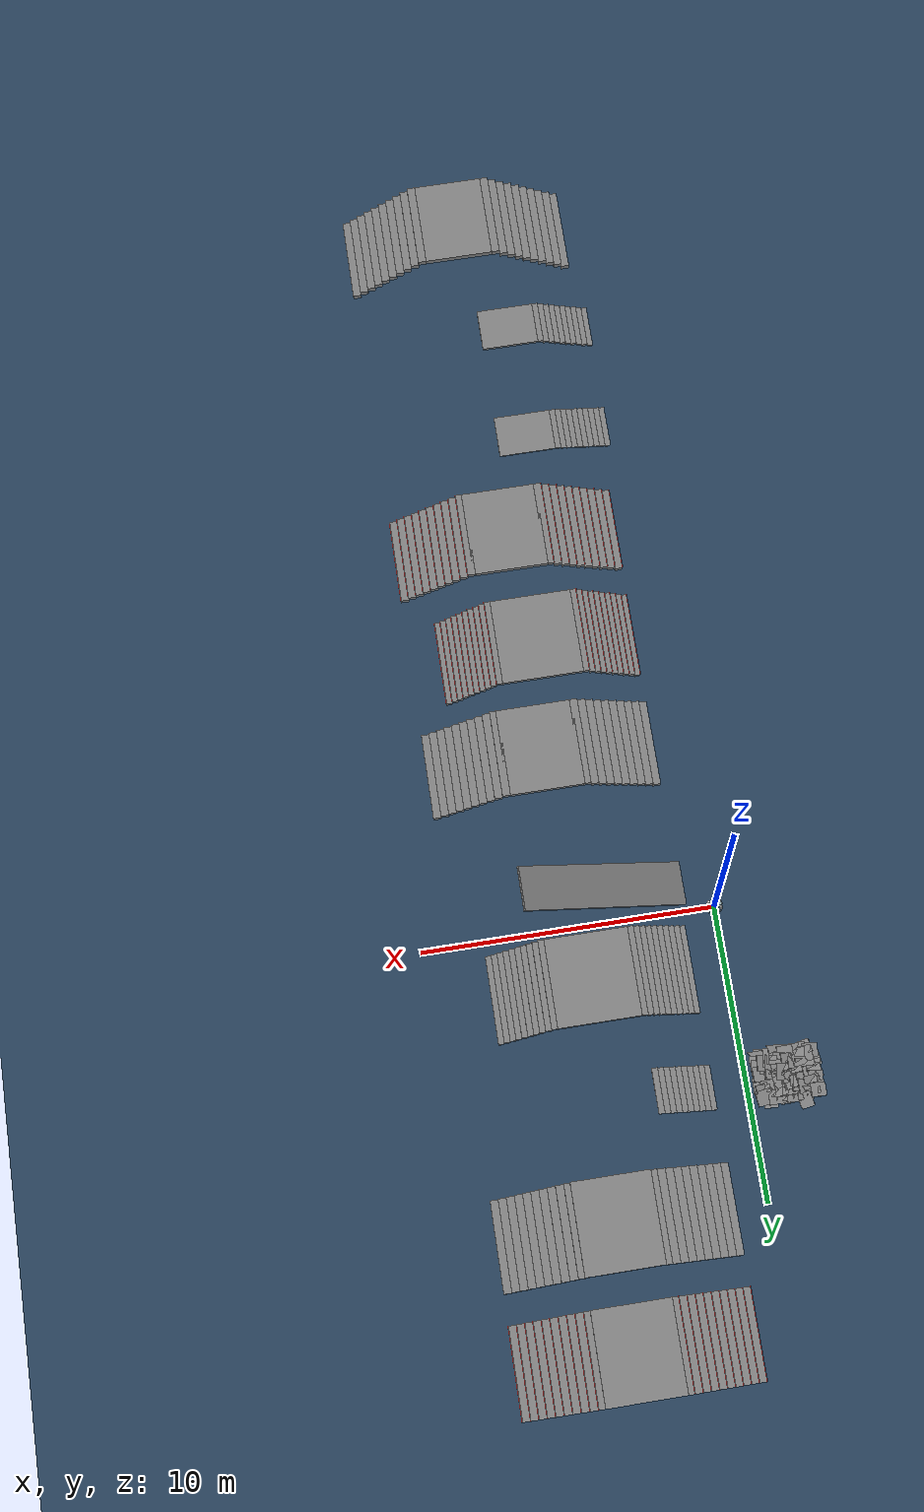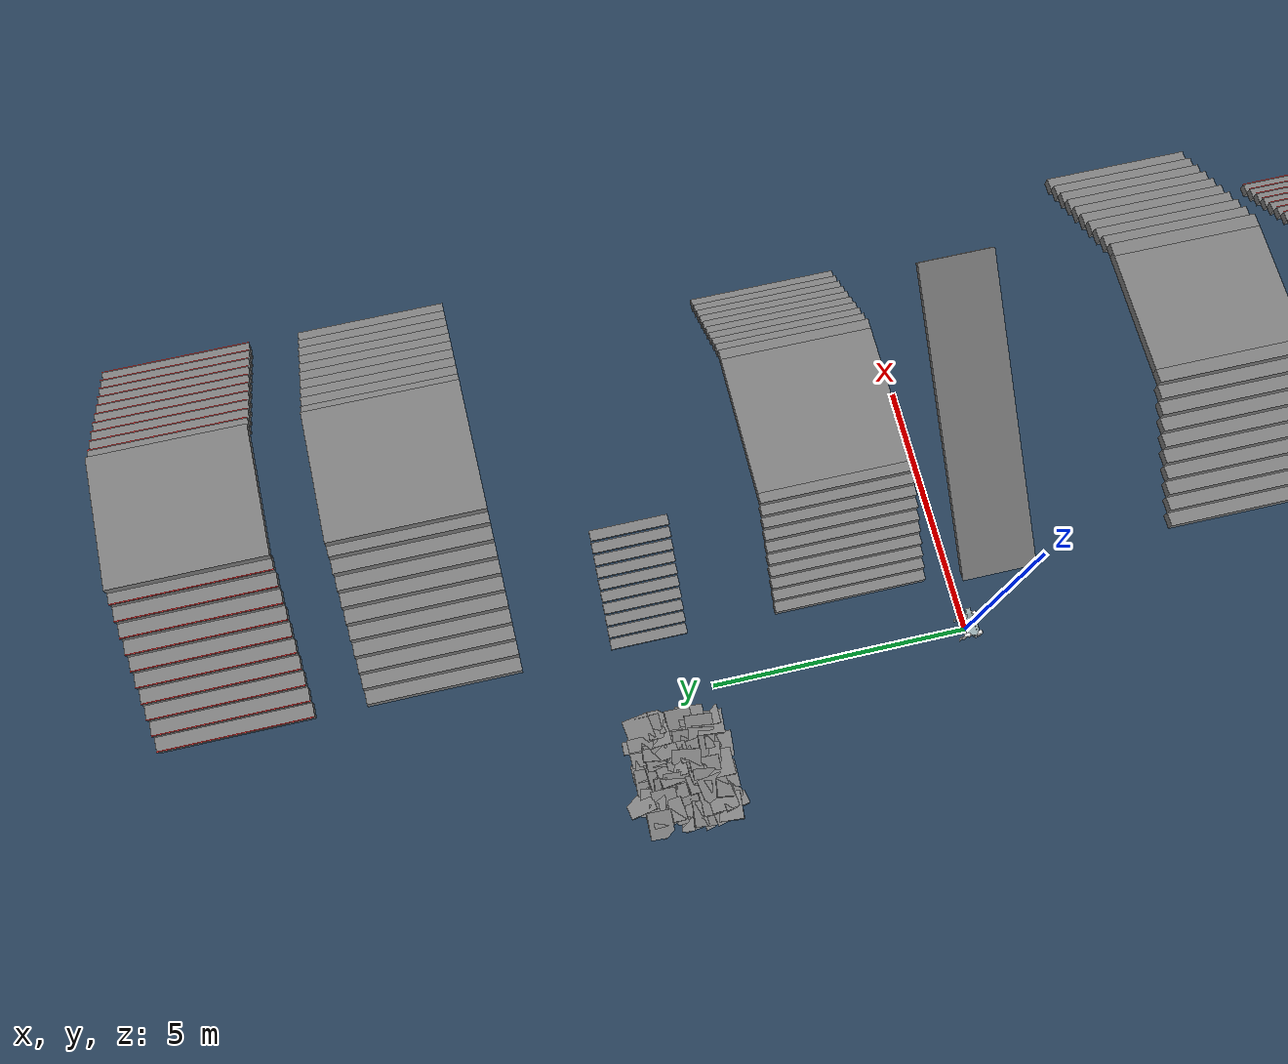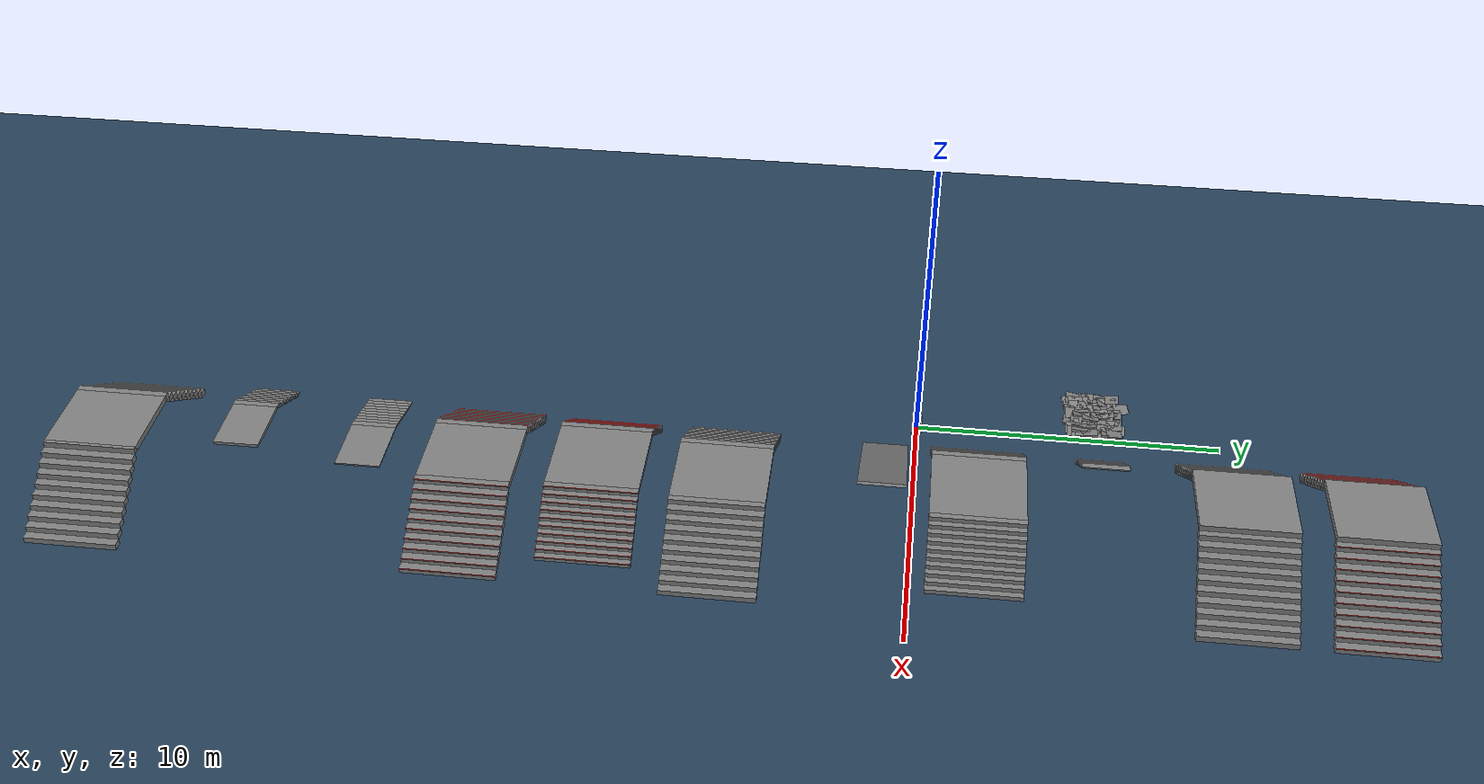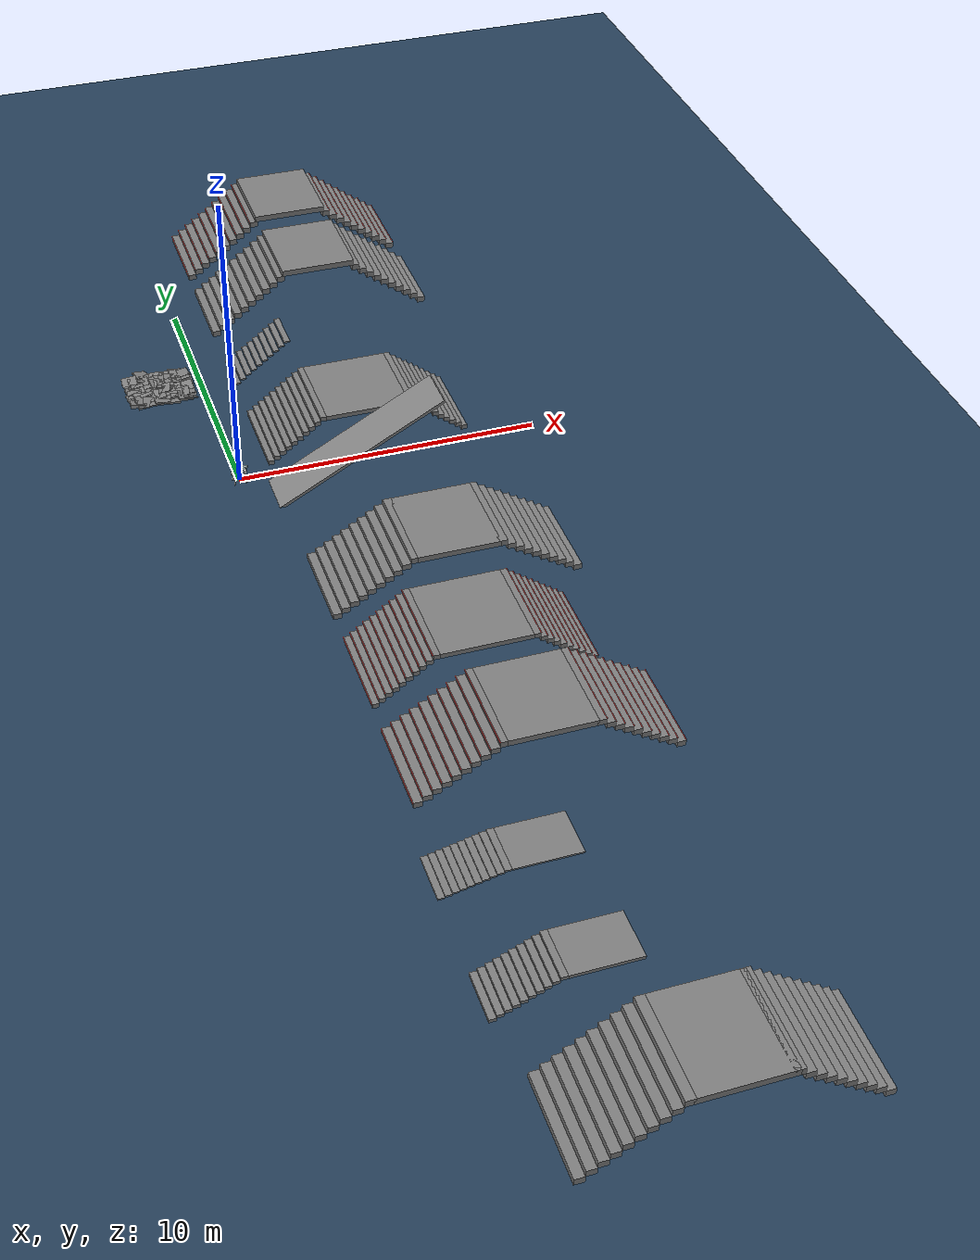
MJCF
<mujoco model="cyvet terrain scene">
  <include file="cyvet.xml"/>

  <statistic center="0 0 0.1" extent="0.8" />

  <visual>
    <headlight diffuse="0.6 0.6 0.6" ambient="0.3 0.3 0.3" specular="0 0 0" />
    <rgba haze="0.15 0.25 0.35 1" />
    <global azimuth="-130" elevation="-20" />
  </visual>

  <asset>
    <texture type="skybox" builtin="gradient" rgb1="0.3 0.5 0.7" rgb2="0 0 0" width="512" height="3072" />
    <texture type="2d" name="groundplane" builtin="checker" mark="edge" rgb1="0.2 0.3 0.4" rgb2="0.1 0.2 0.3" markrgb="0.8 0.8 0.8" width="300" height="300" />
    <material name="groundplane" texture="groundplane" texuniform="true" texrepeat="5 5" reflectance="0.2" />

  </asset>

  <worldbody>
    <light pos="0 0 1.5" dir="0 0 -1" directional="true" />

<geom name="floor" size="0 0 0.05" type="plane" material="groundplane" />

<geom pos="2.0 -1.0 0.5" type="box" size="5.0 0.75 0.05" quat="0.968912421710645 0.0 -0.24740395925452296 0.0" />

   <!-- 5cm/级楼梯 -->
<geom name="stairs_05cm_01" pos="0.8 -18.0 0.025" type="box" size="0.1 0.75 0.025" quat="1.0 0.0 0.0 0.0" />
<geom name="stairs_05cm_02" pos="1.0 -18.0 0.075" type="box" size="0.1 0.75 0.025" quat="1.0 0.0 0.0 0.0" />
<geom name="stairs_05cm_03" pos="1.2 -18.0 0.125" type="box" size="0.1 0.75 0.025" quat="1.0 0.0 0.0 0.0" />
<geom name="stairs_05cm_04" pos="1.4 -18.0 0.175" type="box" size="0.1 0.75 0.025" quat="1.0 0.0 0.0 0.0" />
<geom name="stairs_05cm_05" pos="1.6 -18.0 0.225" type="box" size="0.1 0.75 0.025" quat="1.0 0.0 0.0 0.0" />
<geom name="stairs_05cm_06" pos="1.8 -18.0 0.275" type="box" size="0.1 0.75 0.025" quat="1.0 0.0 0.0 0.0" />
<geom name="stairs_05cm_07" pos="2.0 -18.0 0.325" type="box" size="0.1 0.75 0.025" quat="1.0 0.0 0.0 0.0" />
<geom name="stairs_05cm_08" pos="2.2 -18.0 0.375" type="box" size="0.1 0.75 0.025" quat="1.0 0.0 0.0 0.0" />
<geom name="stairs_05cm_09" pos="2.4 -18.0 0.425" type="box" size="0.1 0.75 0.025" quat="1.0 0.0 0.0 0.0" />
<geom name="stairs_05cm_10" pos="2.6 -18.0 0.475" type="box" size="0.1 0.75 0.025" quat="1.0 0.0 0.0 0.0" />
<geom name="stairs_05cm_platform" pos="3.7 -18.0 0.475" type="box" size="1.0 0.75 0.025" quat="1.0 0.0 0.0 0.0" />

   <!-- 10cm/级楼梯 -->
<geom name="stairs_10cm_01" pos="0.8 -22.0 0.05" type="box" size="0.1 0.75 0.05" quat="1.0 0.0 0.0 0.0" />
<geom name="stairs_10cm_02" pos="1.0 -22.0 0.15" type="box" size="0.1 0.75 0.05" quat="1.0 0.0 0.0 0.0" />
<geom name="stairs_10cm_03" pos="1.2 -22.0 0.25" type="box" size="0.1 0.75 0.05" quat="1.0 0.0 0.0 0.0" />
<geom name="stairs_10cm_04" pos="1.4 -22.0 0.35" type="box" size="0.1 0.75 0.05" quat="1.0 0.0 0.0 0.0" />
<geom name="stairs_10cm_05" pos="1.6 -22.0 0.45" type="box" size="0.1 0.75 0.05" quat="1.0 0.0 0.0 0.0" />
<geom name="stairs_10cm_06" pos="1.8 -22.0 0.55" type="box" size="0.1 0.75 0.05" quat="1.0 0.0 0.0 0.0" />
<geom name="stairs_10cm_07" pos="2.0 -22.0 0.65" type="box" size="0.1 0.75 0.05" quat="1.0 0.0 0.0 0.0" />
<geom name="stairs_10cm_08" pos="2.2 -22.0 0.75" type="box" size="0.1 0.75 0.05" quat="1.0 0.0 0.0 0.0" />
<geom name="stairs_10cm_09" pos="2.4 -22.0 0.85" type="box" size="0.1 0.75 0.05" quat="1.0 0.0 0.0 0.0" />
<geom name="stairs_10cm_10" pos="2.6 -22.0 0.95" type="box" size="0.1 0.75 0.05" quat="1.0 0.0 0.0 0.0" />
<geom name="stairs_10cm_platform" pos="3.7 -22.0 0.95" type="box" size="1.0 0.75 0.05" quat="1.0 0.0 0.0 0.0" />

   <!-- 台阶1 -->
<geom pos="1.2 2.0 0.075" type="box" size="0.1 1.5 0.075" quat="1.0 0.0 0.0 0.0" />
<geom pos="1.4 2.0 0.22499999999999998" type="box" size="0.1 1.5 0.075" quat="1.0 0.0 0.0 0.0" />
<geom pos="1.6 2.0 0.375" type="box" size="0.1 1.5 0.075" quat="1.0 0.0 0.0 0.0" />
<geom pos="1.8 2.0 0.525" type="box" size="0.1 1.5 0.075" quat="1.0 0.0 0.0 0.0" />
<geom pos="2.0 2.0 0.675" type="box" size="0.1 1.5 0.075" quat="1.0 0.0 0.0 0.0" />
<geom pos="2.2 2.0 0.8250000000000001" type="box" size="0.1 1.5 0.075" quat="1.0 0.0 0.0 0.0" />
<geom pos="2.4 2.0 0.9750000000000001" type="box" size="0.1 1.5 0.075" quat="1.0 0.0 0.0 0.0" />
<geom pos="2.5999999999999996 2.0 1.125" type="box" size="0.1 1.5 0.075" quat="1.0 0.0 0.0 0.0" />
<geom pos="2.8 2.0 1.275" type="box" size="0.1 1.5 0.075" quat="1.0 0.0 0.0 0.0" />
<geom pos="3.0 2.0 1.4249999999999998" type="box" size="0.1 1.5 0.075" quat="1.0 0.0 0.0 0.0" />

<geom pos="4.5 2.0 1.4249999999999998" type="box" size="1.4 1.5 0.075" quat="1.0 0.0 0.0 0.0" />
<geom pos="7.8 2.0 0.075" type="box" size="0.1 1.5 0.075" quat="1.0 0.0 0.0 0.0" />
<geom pos="7.6 2.0 0.22499999999999998" type="box" size="0.1 1.5 0.075" quat="1.0 0.0 0.0 0.0" />
<geom pos="7.4 2.0 0.375" type="box" size="0.1 1.5 0.075" quat="1.0 0.0 0.0 0.0" />
<geom pos="7.2 2.0 0.525" type="box" size="0.1 1.5 0.075" quat="1.0 0.0 0.0 0.0" />
<geom pos="7.0 2.0 0.675" type="box" size="0.1 1.5 0.075" quat="1.0 0.0 0.0 0.0" />
<geom pos="6.8 2.0 0.8250000000000001" type="box" size="0.1 1.5 0.075" quat="1.0 0.0 0.0 0.0" />
<geom pos="6.6 2.0 0.9750000000000001" type="box" size="0.1 1.5 0.075" quat="1.0 0.0 0.0 0.0" />
<geom pos="6.4 2.0 1.125" type="box" size="0.1 1.5 0.075" quat="1.0 0.0 0.0 0.0" />
<geom pos="6.2 2.0 1.275" type="box" size="0.1 1.5 0.075" quat="1.0 0.0 0.0 0.0" />
<geom pos="6.0 2.0 1.4249999999999998" type="box" size="0.1 1.5 0.075" quat="1.0 0.0 0.0 0.0" />
   <!-- 台阶1 -->

   <!-- 台阶1（带 2cm 凸起条带 / nosing），放在 y=-10 便于对比 -->
<geom pos="1.2 -10.0 0.075" type="box" size="0.1 1.5 0.075" quat="1.0 0.0 0.0 0.0" />
<geom pos="1.09 -10.0 0.14" type="box" size="0.01 1.5 0.01" quat="1.0 0.0 0.0 0.0" contype="1" conaffinity="1" condim="3" margin="0.002" rgba="0.8 0.2 0.2 1" />
<geom pos="1.4 -10.0 0.22499999999999998" type="box" size="0.1 1.5 0.075" quat="1.0 0.0 0.0 0.0" />
<geom pos="1.29 -10.0 0.29" type="box" size="0.01 1.5 0.01" quat="1.0 0.0 0.0 0.0" contype="1" conaffinity="1" condim="3" margin="0.002" rgba="0.8 0.2 0.2 1" />
<geom pos="1.6 -10.0 0.375" type="box" size="0.1 1.5 0.075" quat="1.0 0.0 0.0 0.0" />
<geom pos="1.49 -10.0 0.44" type="box" size="0.01 1.5 0.01" quat="1.0 0.0 0.0 0.0" contype="1" conaffinity="1" condim="3" margin="0.002" rgba="0.8 0.2 0.2 1" />
<geom pos="1.8 -10.0 0.525" type="box" size="0.1 1.5 0.075" quat="1.0 0.0 0.0 0.0" />
<geom pos="1.69 -10.0 0.59" type="box" size="0.01 1.5 0.01" quat="1.0 0.0 0.0 0.0" contype="1" conaffinity="1" condim="3" margin="0.002" rgba="0.8 0.2 0.2 1" />
<geom pos="2.0 -10.0 0.675" type="box" size="0.1 1.5 0.075" quat="1.0 0.0 0.0 0.0" />
<geom pos="1.89 -10.0 0.74" type="box" size="0.01 1.5 0.01" quat="1.0 0.0 0.0 0.0" contype="1" conaffinity="1" condim="3" margin="0.002" rgba="0.8 0.2 0.2 1" />
<geom pos="2.2 -10.0 0.8250000000000001" type="box" size="0.1 1.5 0.075" quat="1.0 0.0 0.0 0.0" />
<geom pos="2.09 -10.0 0.8900000000000001" type="box" size="0.01 1.5 0.01" quat="1.0 0.0 0.0 0.0" contype="1" conaffinity="1" condim="3" margin="0.002" rgba="0.8 0.2 0.2 1" />
<geom pos="2.4 -10.0 0.9750000000000001" type="box" size="0.1 1.5 0.075" quat="1.0 0.0 0.0 0.0" />
<geom pos="2.29 -10.0 1.04" type="box" size="0.01 1.5 0.01" quat="1.0 0.0 0.0 0.0" contype="1" conaffinity="1" condim="3" margin="0.002" rgba="0.8 0.2 0.2 1" />
<geom pos="2.5999999999999996 -10.0 1.125" type="box" size="0.1 1.5 0.075" quat="1.0 0.0 0.0 0.0" />
<geom pos="2.4899999999999998 -10.0 1.19" type="box" size="0.01 1.5 0.01" quat="1.0 0.0 0.0 0.0" contype="1" conaffinity="1" condim="3" margin="0.002" rgba="0.8 0.2 0.2 1" />
<geom pos="2.8 -10.0 1.275" type="box" size="0.1 1.5 0.075" quat="1.0 0.0 0.0 0.0" />
<geom pos="2.69 -10.0 1.34" type="box" size="0.01 1.5 0.01" quat="1.0 0.0 0.0 0.0" contype="1" conaffinity="1" condim="3" margin="0.002" rgba="0.8 0.2 0.2 1" />
<geom pos="3.0 -10.0 1.4249999999999998" type="box" size="0.1 1.5 0.075" quat="1.0 0.0 0.0 0.0" />
<geom pos="2.89 -10.0 1.4899999999999998" type="box" size="0.01 1.5 0.01" quat="1.0 0.0 0.0 0.0" contype="1" conaffinity="1" condim="3" margin="0.002" rgba="0.8 0.2 0.2 1" />

<geom pos="4.5 -10.0 1.4249999999999998" type="box" size="1.4 1.5 0.075" quat="1.0 0.0 0.0 0.0" />

<geom pos="7.8 -10.0 0.075" type="box" size="0.1 1.5 0.075" quat="1.0 0.0 0.0 0.0" />
<geom pos="7.91 -10.0 0.14" type="box" size="0.01 1.5 0.01" quat="1.0 0.0 0.0 0.0" contype="1" conaffinity="1" condim="3" margin="0.002" rgba="0.8 0.2 0.2 1" />
<geom pos="7.6 -10.0 0.22499999999999998" type="box" size="0.1 1.5 0.075" quat="1.0 0.0 0.0 0.0" />
<geom pos="7.71 -10.0 0.29" type="box" size="0.01 1.5 0.01" quat="1.0 0.0 0.0 0.0" contype="1" conaffinity="1" condim="3" margin="0.002" rgba="0.8 0.2 0.2 1" />
<geom pos="7.4 -10.0 0.375" type="box" size="0.1 1.5 0.075" quat="1.0 0.0 0.0 0.0" />
<geom pos="7.51 -10.0 0.44" type="box" size="0.01 1.5 0.01" quat="1.0 0.0 0.0 0.0" contype="1" conaffinity="1" condim="3" margin="0.002" rgba="0.8 0.2 0.2 1" />
<geom pos="7.2 -10.0 0.525" type="box" size="0.1 1.5 0.075" quat="1.0 0.0 0.0 0.0" />
<geom pos="7.31 -10.0 0.59" type="box" size="0.01 1.5 0.01" quat="1.0 0.0 0.0 0.0" contype="1" conaffinity="1" condim="3" margin="0.002" rgba="0.8 0.2 0.2 1" />
<geom pos="7.0 -10.0 0.675" type="box" size="0.1 1.5 0.075" quat="1.0 0.0 0.0 0.0" />
<geom pos="7.11 -10.0 0.74" type="box" size="0.01 1.5 0.01" quat="1.0 0.0 0.0 0.0" contype="1" conaffinity="1" condim="3" margin="0.002" rgba="0.8 0.2 0.2 1" />
<geom pos="6.8 -10.0 0.8250000000000001" type="box" size="0.1 1.5 0.075" quat="1.0 0.0 0.0 0.0" />
<geom pos="6.91 -10.0 0.8900000000000001" type="box" size="0.01 1.5 0.01" quat="1.0 0.0 0.0 0.0" contype="1" conaffinity="1" condim="3" margin="0.002" rgba="0.8 0.2 0.2 1" />
<geom pos="6.6 -10.0 0.9750000000000001" type="box" size="0.1 1.5 0.075" quat="1.0 0.0 0.0 0.0" />
<geom pos="6.71 -10.0 1.04" type="box" size="0.01 1.5 0.01" quat="1.0 0.0 0.0 0.0" contype="1" conaffinity="1" condim="3" margin="0.002" rgba="0.8 0.2 0.2 1" />
<geom pos="6.4 -10.0 1.125" type="box" size="0.1 1.5 0.075" quat="1.0 0.0 0.0 0.0" />
<geom pos="6.51 -10.0 1.19" type="box" size="0.01 1.5 0.01" quat="1.0 0.0 0.0 0.0" contype="1" conaffinity="1" condim="3" margin="0.002" rgba="0.8 0.2 0.2 1" />
<geom pos="6.2 -10.0 1.275" type="box" size="0.1 1.5 0.075" quat="1.0 0.0 0.0 0.0" />
<geom pos="6.31 -10.0 1.34" type="box" size="0.01 1.5 0.01" quat="1.0 0.0 0.0 0.0" contype="1" conaffinity="1" condim="3" margin="0.002" rgba="0.8 0.2 0.2 1" />
<geom pos="6.0 -10.0 1.4249999999999998" type="box" size="0.1 1.5 0.075" quat="1.0 0.0 0.0 0.0" />
<geom pos="6.11 -10.0 1.4899999999999998" type="box" size="0.01 1.5 0.01" quat="1.0 0.0 0.0 0.0" contype="1" conaffinity="1" condim="3" margin="0.002" rgba="0.8 0.2 0.2 1" />

<geom pos="1.2 6.0 0.075" type="box" size="0.1 0.75 0.024999999999999994" quat="1.0 0.0 0.0 0.0" />
<geom pos="1.4 6.0 0.22499999999999998" type="box" size="0.1 0.75 0.024999999999999994" quat="1.0 0.0 0.0 0.0" />
<geom pos="1.6 6.0 0.375" type="box" size="0.1 0.75 0.024999999999999994" quat="1.0 0.0 0.0 0.0" />
<geom pos="1.8 6.0 0.525" type="box" size="0.1 0.75 0.024999999999999994" quat="1.0 0.0 0.0 0.0" />
<geom pos="2.0 6.0 0.675" type="box" size="0.1 0.75 0.024999999999999994" quat="1.0 0.0 0.0 0.0" />
<geom pos="2.2 6.0 0.8250000000000001" type="box" size="0.1 0.75 0.024999999999999994" quat="1.0 0.0 0.0 0.0" />
<geom pos="2.4 6.0 0.9750000000000001" type="box" size="0.1 0.75 0.024999999999999994" quat="1.0 0.0 0.0 0.0" />
<geom pos="2.5999999999999996 6.0 1.125" type="box" size="0.1 0.75 0.024999999999999994" quat="1.0 0.0 0.0 0.0" />
<geom pos="2.8 6.0 1.275" type="box" size="0.1 0.75 0.024999999999999994" quat="1.0 0.0 0.0 0.0" />
<geom pos="3.0 6.0 1.4249999999999998" type="box" size="0.1 0.75 0.024999999999999994" quat="1.0 0.0 0.0 0.0" />

<!-- 20cm高 27cm宽 台阶 -->
<geom pos="1.2 10 0.1" type="box" size="0.135 1.5 0.1" quat="1.0 0.0 0.0 0.0" />
<geom pos="1.47 10 0.3" type="box" size="0.135 1.5 0.1" quat="1.0 0.0 0.0 0.0" />
<geom pos="1.74 10 0.5" type="box" size="0.135 1.5 0.1" quat="1.0 0.0 0.0 0.0" />
<geom pos="2.01 10 0.7" type="box" size="0.135 1.5 0.1" quat="1.0 0.0 0.0 0.0" />
<geom pos="2.28 10 0.9" type="box" size="0.135 1.5 0.1" quat="1.0 0.0 0.0 0.0" />
<geom pos="2.55 10 1.1" type="box" size="0.135 1.5 0.1" quat="1.0 0.0 0.0 0.0" />
<geom pos="2.82 10 1.3" type="box" size="0.135 1.5 0.1" quat="1.0 0.0 0.0 0.0" />
<geom pos="3.09 10 1.5" type="box" size="0.135 1.5 0.1" quat="1.0 0.0 0.0 0.0" />
<geom pos="3.36 10 1.7" type="box" size="0.135 1.5 0.1" quat="1.0 0.0 0.0 0.0" />
<geom pos="3.63 10 1.9" type="box" size="0.135 1.5 0.1" quat="1.0 0.0 0.0 0.0" />
<geom pos="5 10 2.1" type="box" size="1.3 1.5 0.1" quat="1.0 0.0 0.0 0.0" />

<geom pos="8.8 10 0.1" type="box" size="0.135 1.5 0.1" quat="1.0 0.0 0.0 0.0" />
<geom pos="8.53 10 0.3" type="box" size="0.135 1.5 0.1" quat="1.0 0.0 0.0 0.0" />
<geom pos="8.26 10 0.5" type="box" size="0.135 1.5 0.1" quat="1.0 0.0 0.0 0.0" />
<geom pos="7.99 10 0.7" type="box" size="0.135 1.5 0.1" quat="1.0 0.0 0.0 0.0" />
<geom pos="7.72 10 0.9" type="box" size="0.135 1.5 0.1" quat="1.0 0.0 0.0 0.0" />
<geom pos="7.45 10 1.1" type="box" size="0.135 1.5 0.1" quat="1.0 0.0 0.0 0.0" />
<geom pos="7.18 10 1.3" type="box" size="0.135 1.5 0.1" quat="1.0 0.0 0.0 0.0" />
<geom pos="6.91 10 1.5" type="box" size="0.135 1.5 0.1" quat="1.0 0.0 0.0 0.0" />
<geom pos="6.64 10 1.7" type="box" size="0.135 1.5 0.1" quat="1.0 0.0 0.0 0.0" />
<geom pos="6.37 10 1.9" type="box" size="0.135 1.5 0.1" quat="1.0 0.0 0.0 0.0" />

<!-- 20cm高 27cm宽 台阶（带 2cm 凸起条带 / nosing），放在 y=14 便于对比 -->
<geom pos="1.2 14 0.1" type="box" size="0.135 1.5 0.1" quat="1.0 0.0 0.0 0.0" />
<geom pos="1.055 14 0.19" type="box" size="0.01 1.5 0.01" quat="1.0 0.0 0.0 0.0" contype="1" conaffinity="1" condim="3" margin="0.002" rgba="0.8 0.2 0.2 1" />
<geom pos="1.47 14 0.3" type="box" size="0.135 1.5 0.1" quat="1.0 0.0 0.0 0.0" />
<geom pos="1.325 14 0.39" type="box" size="0.01 1.5 0.01" quat="1.0 0.0 0.0 0.0" contype="1" conaffinity="1" condim="3" margin="0.002" rgba="0.8 0.2 0.2 1" />
<geom pos="1.74 14 0.5" type="box" size="0.135 1.5 0.1" quat="1.0 0.0 0.0 0.0" />
<geom pos="1.595 14 0.59" type="box" size="0.01 1.5 0.01" quat="1.0 0.0 0.0 0.0" contype="1" conaffinity="1" condim="3" margin="0.002" rgba="0.8 0.2 0.2 1" />
<geom pos="2.01 14 0.7" type="box" size="0.135 1.5 0.1" quat="1.0 0.0 0.0 0.0" />
<geom pos="1.865 14 0.7899999999999999" type="box" size="0.01 1.5 0.01" quat="1.0 0.0 0.0 0.0" contype="1" conaffinity="1" condim="3" margin="0.002" rgba="0.8 0.2 0.2 1" />
<geom pos="2.28 14 0.9" type="box" size="0.135 1.5 0.1" quat="1.0 0.0 0.0 0.0" />
<geom pos="2.135 14 0.99" type="box" size="0.01 1.5 0.01" quat="1.0 0.0 0.0 0.0" contype="1" conaffinity="1" condim="3" margin="0.002" rgba="0.8 0.2 0.2 1" />
<geom pos="2.55 14 1.1" type="box" size="0.135 1.5 0.1" quat="1.0 0.0 0.0 0.0" />
<geom pos="2.405 14 1.1900000000000002" type="box" size="0.01 1.5 0.01" quat="1.0 0.0 0.0 0.0" contype="1" conaffinity="1" condim="3" margin="0.002" rgba="0.8 0.2 0.2 1" />
<geom pos="2.82 14 1.3" type="box" size="0.135 1.5 0.1" quat="1.0 0.0 0.0 0.0" />
<geom pos="2.675 14 1.39" type="box" size="0.01 1.5 0.01" quat="1.0 0.0 0.0 0.0" contype="1" conaffinity="1" condim="3" margin="0.002" rgba="0.8 0.2 0.2 1" />
<geom pos="3.09 14 1.5" type="box" size="0.135 1.5 0.1" quat="1.0 0.0 0.0 0.0" />
<geom pos="2.945 14 1.5899999999999999" type="box" size="0.01 1.5 0.01" quat="1.0 0.0 0.0 0.0" contype="1" conaffinity="1" condim="3" margin="0.002" rgba="0.8 0.2 0.2 1" />
<geom pos="3.36 14 1.7" type="box" size="0.135 1.5 0.1" quat="1.0 0.0 0.0 0.0" />
<geom pos="3.215 14 1.79" type="box" size="0.01 1.5 0.01" quat="1.0 0.0 0.0 0.0" contype="1" conaffinity="1" condim="3" margin="0.002" rgba="0.8 0.2 0.2 1" />
<geom pos="3.63 14 1.9" type="box" size="0.135 1.5 0.1" quat="1.0 0.0 0.0 0.0" />
<geom pos="3.485 14 1.99" type="box" size="0.01 1.5 0.01" quat="1.0 0.0 0.0 0.0" contype="1" conaffinity="1" condim="3" margin="0.002" rgba="0.8 0.2 0.2 1" />
<geom pos="5 14 2.1" type="box" size="1.3 1.5 0.1" quat="1.0 0.0 0.0 0.0" />

<geom pos="8.8 14 0.1" type="box" size="0.135 1.5 0.1" quat="1.0 0.0 0.0 0.0" />
<geom pos="8.945 14 0.19" type="box" size="0.01 1.5 0.01" quat="1.0 0.0 0.0 0.0" contype="1" conaffinity="1" condim="3" margin="0.002" rgba="0.8 0.2 0.2 1" />
<geom pos="8.53 14 0.3" type="box" size="0.135 1.5 0.1" quat="1.0 0.0 0.0 0.0" />
<geom pos="8.675 14 0.39" type="box" size="0.01 1.5 0.01" quat="1.0 0.0 0.0 0.0" contype="1" conaffinity="1" condim="3" margin="0.002" rgba="0.8 0.2 0.2 1" />
<geom pos="8.26 14 0.5" type="box" size="0.135 1.5 0.1" quat="1.0 0.0 0.0 0.0" />
<geom pos="8.405 14 0.59" type="box" size="0.01 1.5 0.01" quat="1.0 0.0 0.0 0.0" contype="1" conaffinity="1" condim="3" margin="0.002" rgba="0.8 0.2 0.2 1" />
<geom pos="7.99 14 0.7" type="box" size="0.135 1.5 0.1" quat="1.0 0.0 0.0 0.0" />
<geom pos="8.135 14 0.7899999999999999" type="box" size="0.01 1.5 0.01" quat="1.0 0.0 0.0 0.0" contype="1" conaffinity="1" condim="3" margin="0.002" rgba="0.8 0.2 0.2 1" />
<geom pos="7.72 14 0.9" type="box" size="0.135 1.5 0.1" quat="1.0 0.0 0.0 0.0" />
<geom pos="7.865 14 0.99" type="box" size="0.01 1.5 0.01" quat="1.0 0.0 0.0 0.0" contype="1" conaffinity="1" condim="3" margin="0.002" rgba="0.8 0.2 0.2 1" />
<geom pos="7.45 14 1.1" type="box" size="0.135 1.5 0.1" quat="1.0 0.0 0.0 0.0" />
<geom pos="7.595 14 1.1900000000000002" type="box" size="0.01 1.5 0.01" quat="1.0 0.0 0.0 0.0" contype="1" conaffinity="1" condim="3" margin="0.002" rgba="0.8 0.2 0.2 1" />
<geom pos="7.18 14 1.3" type="box" size="0.135 1.5 0.1" quat="1.0 0.0 0.0 0.0" />
<geom pos="7.325 14 1.39" type="box" size="0.01 1.5 0.01" quat="1.0 0.0 0.0 0.0" contype="1" conaffinity="1" condim="3" margin="0.002" rgba="0.8 0.2 0.2 1" />
<geom pos="6.91 14 1.5" type="box" size="0.135 1.5 0.1" quat="1.0 0.0 0.0 0.0" />
<geom pos="7.055 14 1.5899999999999999" type="box" size="0.01 1.5 0.01" quat="1.0 0.0 0.0 0.0" contype="1" conaffinity="1" condim="3" margin="0.002" rgba="0.8 0.2 0.2 1" />
<geom pos="6.64 14 1.7" type="box" size="0.135 1.5 0.1" quat="1.0 0.0 0.0 0.0" />
<geom pos="6.785 14 1.79" type="box" size="0.01 1.5 0.01" quat="1.0 0.0 0.0 0.0" contype="1" conaffinity="1" condim="3" margin="0.002" rgba="0.8 0.2 0.2 1" />
<geom pos="6.37 14 1.9" type="box" size="0.135 1.5 0.1" quat="1.0 0.0 0.0 0.0" />
<geom pos="6.515 14 1.99" type="box" size="0.01 1.5 0.01" quat="1.0 0.0 0.0 0.0" contype="1" conaffinity="1" condim="3" margin="0.002" rgba="0.8 0.2 0.2 1" />

<!-- 17cm高 27cm宽 台阶 -->
<geom pos="1.2 -6 0.085" type="box" size="0.135 1.5 0.09" quat="1.0 0.0 0.0 0.0" />
<geom pos="1.47 -6 0.255" type="box" size="0.135 1.5 0.09" quat="1.0 0.0 0.0 0.0" />
<geom pos="1.74 -6 0.425" type="box" size="0.135 1.5 0.09" quat="1.0 0.0 0.0 0.0" />
<geom pos="2.01 -6 0.595" type="box" size="0.135 1.5 0.09" quat="1.0 0.0 0.0 0.0" />
<geom pos="2.28 -6 0.765" type="box" size="0.135 1.5 0.09" quat="1.0 0.0 0.0 0.0" />
<geom pos="2.55 -6 0.935" type="box" size="0.135 1.5 0.09" quat="1.0 0.0 0.0 0.0" />
<geom pos="2.82 -6 1.105" type="box" size="0.135 1.5 0.09" quat="1.0 0.0 0.0 0.0" />
<geom pos="3.09 -6 1.275" type="box" size="0.135 1.5 0.09" quat="1.0 0.0 0.0 0.0" />
<geom pos="3.36 -6 1.445" type="box" size="0.135 1.5 0.09" quat="1.0 0.0 0.0 0.0" />
<geom pos="3.63 -6 1.615" type="box" size="0.135 1.5 0.09" quat="1.0 0.0 0.0 0.0" />
<geom pos="5 -6 1.615" type="box" size="1.3 1.5 0.09" quat="1.0 0.0 0.0 0.0" />

<geom pos="8.8 -6 0.085" type="box" size="0.135 1.5 0.09" quat="1.0 0.0 0.0 0.0" />
<geom pos="8.53 -6 0.255" type="box" size="0.135 1.5 0.09" quat="1.0 0.0 0.0 0.0" />
<geom pos="8.26 -6 0.425" type="box" size="0.135 1.5 0.09" quat="1.0 0.0 0.0 0.0" />
<geom pos="7.99 -6 0.595" type="box" size="0.135 1.5 0.09" quat="1.0 0.0 0.0 0.0" />
<geom pos="7.72 -6 0.765" type="box" size="0.135 1.5 0.09" quat="1.0 0.0 0.0 0.0" />
<geom pos="7.45 -6 0.935" type="box" size="0.135 1.5 0.09" quat="1.0 0.0 0.0 0.0" />
<geom pos="7.18 -6 1.105" type="box" size="0.135 1.5 0.09" quat="1.0 0.0 0.0 0.0" />
<geom pos="6.91 -6 1.275" type="box" size="0.135 1.5 0.09" quat="1.0 0.0 0.0 0.0" />
<geom pos="6.64 -6 1.445" type="box" size="0.135 1.5 0.09" quat="1.0 0.0 0.0 0.0" />
<geom pos="6.37 -6 1.615" type="box" size="0.135 1.5 0.09" quat="1.0 0.0 0.0 0.0" />

<!-- 17cm高 27cm宽 台阶（带 2cm 凸起条带 / nosing），放在 y=-14 便于对比 -->
<geom pos="1.2 -14 0.085" type="box" size="0.135 1.5 0.09" quat="1.0 0.0 0.0 0.0" />
<geom pos="1.055 -14 0.165" type="box" size="0.01 1.5 0.01" quat="1.0 0.0 0.0 0.0" contype="1" conaffinity="1" condim="3" margin="0.002" rgba="0.8 0.2 0.2 1" />
<geom pos="1.47 -14 0.255" type="box" size="0.135 1.5 0.09" quat="1.0 0.0 0.0 0.0" />
<geom pos="1.325 -14 0.335" type="box" size="0.01 1.5 0.01" quat="1.0 0.0 0.0 0.0" contype="1" conaffinity="1" condim="3" margin="0.002" rgba="0.8 0.2 0.2 1" />
<geom pos="1.74 -14 0.425" type="box" size="0.135 1.5 0.09" quat="1.0 0.0 0.0 0.0" />
<geom pos="1.595 -14 0.505" type="box" size="0.01 1.5 0.01" quat="1.0 0.0 0.0 0.0" contype="1" conaffinity="1" condim="3" margin="0.002" rgba="0.8 0.2 0.2 1" />
<geom pos="2.01 -14 0.595" type="box" size="0.135 1.5 0.09" quat="1.0 0.0 0.0 0.0" />
<geom pos="1.865 -14 0.675" type="box" size="0.01 1.5 0.01" quat="1.0 0.0 0.0 0.0" contype="1" conaffinity="1" condim="3" margin="0.002" rgba="0.8 0.2 0.2 1" />
<geom pos="2.28 -14 0.765" type="box" size="0.135 1.5 0.09" quat="1.0 0.0 0.0 0.0" />
<geom pos="2.135 -14 0.845" type="box" size="0.01 1.5 0.01" quat="1.0 0.0 0.0 0.0" contype="1" conaffinity="1" condim="3" margin="0.002" rgba="0.8 0.2 0.2 1" />
<geom pos="2.55 -14 0.935" type="box" size="0.135 1.5 0.09" quat="1.0 0.0 0.0 0.0" />
<geom pos="2.405 -14 1.015" type="box" size="0.01 1.5 0.01" quat="1.0 0.0 0.0 0.0" contype="1" conaffinity="1" condim="3" margin="0.002" rgba="0.8 0.2 0.2 1" />
<geom pos="2.82 -14 1.105" type="box" size="0.135 1.5 0.09" quat="1.0 0.0 0.0 0.0" />
<geom pos="2.675 -14 1.185" type="box" size="0.01 1.5 0.01" quat="1.0 0.0 0.0 0.0" contype="1" conaffinity="1" condim="3" margin="0.002" rgba="0.8 0.2 0.2 1" />
<geom pos="3.09 -14 1.275" type="box" size="0.135 1.5 0.09" quat="1.0 0.0 0.0 0.0" />
<geom pos="2.945 -14 1.355" type="box" size="0.01 1.5 0.01" quat="1.0 0.0 0.0 0.0" contype="1" conaffinity="1" condim="3" margin="0.002" rgba="0.8 0.2 0.2 1" />
<geom pos="3.36 -14 1.445" type="box" size="0.135 1.5 0.09" quat="1.0 0.0 0.0 0.0" />
<geom pos="3.215 -14 1.525" type="box" size="0.01 1.5 0.01" quat="1.0 0.0 0.0 0.0" contype="1" conaffinity="1" condim="3" margin="0.002" rgba="0.8 0.2 0.2 1" />
<geom pos="3.63 -14 1.615" type="box" size="0.135 1.5 0.09" quat="1.0 0.0 0.0 0.0" />
<geom pos="3.485 -14 1.695" type="box" size="0.01 1.5 0.01" quat="1.0 0.0 0.0 0.0" contype="1" conaffinity="1" condim="3" margin="0.002" rgba="0.8 0.2 0.2 1" />
<geom pos="5 -14 1.615" type="box" size="1.3 1.5 0.09" quat="1.0 0.0 0.0 0.0" />

<geom pos="8.8 -14 0.085" type="box" size="0.135 1.5 0.09" quat="1.0 0.0 0.0 0.0" />
<geom pos="8.945 -14 0.165" type="box" size="0.01 1.5 0.01" quat="1.0 0.0 0.0 0.0" contype="1" conaffinity="1" condim="3" margin="0.002" rgba="0.8 0.2 0.2 1" />
<geom pos="8.53 -14 0.255" type="box" size="0.135 1.5 0.09" quat="1.0 0.0 0.0 0.0" />
<geom pos="8.675 -14 0.335" type="box" size="0.01 1.5 0.01" quat="1.0 0.0 0.0 0.0" contype="1" conaffinity="1" condim="3" margin="0.002" rgba="0.8 0.2 0.2 1" />
<geom pos="8.26 -14 0.425" type="box" size="0.135 1.5 0.09" quat="1.0 0.0 0.0 0.0" />
<geom pos="8.405 -14 0.505" type="box" size="0.01 1.5 0.01" quat="1.0 0.0 0.0 0.0" contype="1" conaffinity="1" condim="3" margin="0.002" rgba="0.8 0.2 0.2 1" />
<geom pos="7.99 -14 0.595" type="box" size="0.135 1.5 0.09" quat="1.0 0.0 0.0 0.0" />
<geom pos="8.135 -14 0.675" type="box" size="0.01 1.5 0.01" quat="1.0 0.0 0.0 0.0" contype="1" conaffinity="1" condim="3" margin="0.002" rgba="0.8 0.2 0.2 1" />
<geom pos="7.72 -14 0.765" type="box" size="0.135 1.5 0.09" quat="1.0 0.0 0.0 0.0" />
<geom pos="7.865 -14 0.845" type="box" size="0.01 1.5 0.01" quat="1.0 0.0 0.0 0.0" contype="1" conaffinity="1" condim="3" margin="0.002" rgba="0.8 0.2 0.2 1" />
<geom pos="7.45 -14 0.935" type="box" size="0.135 1.5 0.09" quat="1.0 0.0 0.0 0.0" />
<geom pos="7.595 -14 1.015" type="box" size="0.01 1.5 0.01" quat="1.0 0.0 0.0 0.0" contype="1" conaffinity="1" condim="3" margin="0.002" rgba="0.8 0.2 0.2 1" />
<geom pos="7.18 -14 1.105" type="box" size="0.135 1.5 0.09" quat="1.0 0.0 0.0 0.0" />
<geom pos="7.325 -14 1.185" type="box" size="0.01 1.5 0.01" quat="1.0 0.0 0.0 0.0" contype="1" conaffinity="1" condim="3" margin="0.002" rgba="0.8 0.2 0.2 1" />
<geom pos="6.91 -14 1.275" type="box" size="0.135 1.5 0.09" quat="1.0 0.0 0.0 0.0" />
<geom pos="7.055 -14 1.355" type="box" size="0.01 1.5 0.01" quat="1.0 0.0 0.0 0.0" contype="1" conaffinity="1" condim="3" margin="0.002" rgba="0.8 0.2 0.2 1" />
<geom pos="6.64 -14 1.445" type="box" size="0.135 1.5 0.09" quat="1.0 0.0 0.0 0.0" />
<geom pos="6.785 -14 1.525" type="box" size="0.01 1.5 0.01" quat="1.0 0.0 0.0 0.0" contype="1" conaffinity="1" condim="3" margin="0.002" rgba="0.8 0.2 0.2 1" />
<geom pos="6.37 -14 1.615" type="box" size="0.135 1.5 0.09" quat="1.0 0.0 0.0 0.0" />
<geom pos="6.515 -14 1.695" type="box" size="0.01 1.5 0.01" quat="1.0 0.0 0.0 0.0" contype="1" conaffinity="1" condim="3" margin="0.002" rgba="0.8 0.2 0.2 1" />

<!-- 20cm高 28cm宽 台阶 -->
<geom name="stairs_20cm_28cm_up_01" pos="1.2 -26 0.1" type="box" size="0.14 1.5 0.1" quat="1.0 0.0 0.0 0.0" />
<geom name="stairs_20cm_28cm_up_02" pos="1.48 -26 0.3" type="box" size="0.14 1.5 0.1" quat="1.0 0.0 0.0 0.0" />
<geom name="stairs_20cm_28cm_up_03" pos="1.76 -26 0.5" type="box" size="0.14 1.5 0.1" quat="1.0 0.0 0.0 0.0" />
<geom name="stairs_20cm_28cm_up_04" pos="2.04 -26 0.7" type="box" size="0.14 1.5 0.1" quat="1.0 0.0 0.0 0.0" />
<geom name="stairs_20cm_28cm_up_05" pos="2.32 -26 0.9" type="box" size="0.14 1.5 0.1" quat="1.0 0.0 0.0 0.0" />
<geom name="stairs_20cm_28cm_up_06" pos="2.6 -26 1.1" type="box" size="0.14 1.5 0.1" quat="1.0 0.0 0.0 0.0" />
<geom name="stairs_20cm_28cm_up_07" pos="2.88 -26 1.3" type="box" size="0.14 1.5 0.1" quat="1.0 0.0 0.0 0.0" />
<geom name="stairs_20cm_28cm_up_08" pos="3.16 -26 1.5" type="box" size="0.14 1.5 0.1" quat="1.0 0.0 0.0 0.0" />
<geom name="stairs_20cm_28cm_up_09" pos="3.44 -26 1.7" type="box" size="0.14 1.5 0.1" quat="1.0 0.0 0.0 0.0" />
<geom name="stairs_20cm_28cm_up_10" pos="3.72 -26 1.9" type="box" size="0.14 1.5 0.1" quat="1.0 0.0 0.0 0.0" />
<geom name="stairs_20cm_28cm_platform" pos="5.1 -26 1.9" type="box" size="1.3 1.5 0.1" quat="1.0 0.0 0.0 0.0" />

<geom name="stairs_20cm_28cm_down_01" pos="8.9 -26 0.1" type="box" size="0.14 1.5 0.1" quat="1.0 0.0 0.0 0.0" />
<geom name="stairs_20cm_28cm_down_02" pos="8.62 -26 0.3" type="box" size="0.14 1.5 0.1" quat="1.0 0.0 0.0 0.0" />
<geom name="stairs_20cm_28cm_down_03" pos="8.34 -26 0.5" type="box" size="0.14 1.5 0.1" quat="1.0 0.0 0.0 0.0" />
<geom name="stairs_20cm_28cm_down_04" pos="8.06 -26 0.7" type="box" size="0.14 1.5 0.1" quat="1.0 0.0 0.0 0.0" />
<geom name="stairs_20cm_28cm_down_05" pos="7.78 -26 0.9" type="box" size="0.14 1.5 0.1" quat="1.0 0.0 0.0 0.0" />
<geom name="stairs_20cm_28cm_down_06" pos="7.5 -26 1.1" type="box" size="0.14 1.5 0.1" quat="1.0 0.0 0.0 0.0" />
<geom name="stairs_20cm_28cm_down_07" pos="7.22 -26 1.3" type="box" size="0.14 1.5 0.1" quat="1.0 0.0 0.0 0.0" />
<geom name="stairs_20cm_28cm_down_08" pos="6.94 -26 1.5" type="box" size="0.14 1.5 0.1" quat="1.0 0.0 0.0 0.0" />
<geom name="stairs_20cm_28cm_down_09" pos="6.66 -26 1.7" type="box" size="0.14 1.5 0.1" quat="1.0 0.0 0.0 0.0" />
<geom name="stairs_20cm_28cm_down_10" pos="6.38 -26 1.9" type="box" size="0.14 1.5 0.1" quat="1.0 0.0 0.0 0.0" />

<geom pos="-2.3004568480001155 5.230133099821309 -0.25" type="box" size="0.2667418434232123 0.23249216246593754 0.2715603840154582" quat="0.9937514109759715 -0.09011523303710722 0.04584049177774514 -0.04728665003473938" />
<geom pos="-2.3004568480001155 5.391515746812814 -0.25" type="box" size="0.2505265313539923 0.2412016313894627 0.2264599735410741" quat="0.9947855832976967 0.0430479213794962 0.004496328850963352 0.0923488102512985" />
<geom pos="-2.3004568480001155 5.632708194664771 -0.25" type="box" size="0.2744568938089314 0.24992449427731162 0.22801643019685697" quat="0.9927267717486197 0.07160131296835394 -0.005361370104009311 0.09663366051940456" />
<geom pos="-2.3004568480001155 5.798990692476225 -0.25" type="box" size="0.24325500647900072 0.2253568952181176 0.26629093934549475" quat="0.9942381647366705 0.09525301325965287 0.00794678229822832 -0.048519932987572345" />
<geom pos="-2.3004568480001155 5.973541127254212 -0.25" type="box" size="0.2398510354361266 0.24285052907373605 0.26474659664781297" quat="0.9964084612238755 -0.04106533003165011 -0.0363795415854814 0.06450074437470632" />
<geom pos="-2.3004568480001155 6.1770510315939235 -0.25" type="box" size="0.25720829764278585 0.23711879563200236 0.22878298749776027" quat="0.9937658772683013 -0.08834725270306294 0.0169573991826565 -0.06585279591592566" />
<geom pos="-2.3004568480001155 6.407180520840007 -0.25" type="box" size="0.24754562515074474 0.25947160159627974 0.23928331743280107" quat="0.9958964892628885 0.04305664599570697 -0.045399565427206114 0.0653849169799509" />
<geom pos="-2.3004568480001155 6.629340270719652 -0.25" type="box" size="0.2547590853159438 0.2314305783929404 0.268237133040538" quat="0.9972993669391019 0.044601800582484905 -0.05693885512370222 -0.012752210195468728" />
<geom pos="-2.1403960142105545 5.169451405171494 -0.25" type="box" size="0.24860553780818326 0.2298644058617868 0.2557271181931712" quat="0.9914709750904385 0.03140703504746152 0.09964006753412274 0.07791508611647713" />
<geom pos="-2.1403960142105545 5.365443034016214 -0.25" type="box" size="0.2291512386430681 0.25867181712863563 0.27347983292603073" quat="0.9971489888939771 -0.012801738465963004 0.06299248639499276 0.039521590273487665" />
<geom pos="-2.1403960142105545 5.564856717019695 -0.25" type="box" size="0.23402731407731425 0.26579436660697997 0.2553901560684408" quat="0.9966301905043169 0.07818366455605208 0.024123866909938566 0.005798018388017237" />
<geom pos="-2.1403960142105545 5.718290300524951 -0.25" type="box" size="0.26305873229776777 0.22976833293040352 0.2368622332864588" quat="0.9965179080213955 0.04103949917917902 0.06351715359390735 0.035119648334118" />
<geom pos="-2.1403960142105545 5.937021976021513 -0.25" type="box" size="0.25829997576988234 0.23777318710233433 0.24146425783496483" quat="0.9934945982010286 0.06600502560370954 -0.06390951813814603 0.06728590812183728" />
<geom pos="-2.1403960142105545 6.139922384241892 -0.25" type="box" size="0.23653538925627735 0.2436978135416446 0.240333142471557" quat="0.9965532548871666 0.03912419743215279 0.07314101139716957 0.0011400881032193077" />
<geom pos="-2.1403960142105545 6.301771003196722 -0.25" type="box" size="0.2531389078197739 0.24480016352294456 0.2504805521908677" quat="0.9929737504129765 -0.09338521837305551 -0.05209114295204799 0.05068377261169358" />
<geom pos="-2.1403960142105545 6.507865639382873 -0.25" type="box" size="0.2276301834358782 0.26649607136000125 0.257729055845175" quat="0.9978879006215207 0.06064426844548832 -0.013463574733080436 0.01899322651086425" />
<geom pos="-1.8913580852312173 5.241268832370592 -0.25" type="box" size="0.2626219760929962 0.24411637158707777 0.2607077194593069" quat="0.9875355197654081 0.10169530993875045 0.08550302030532102 -0.0843853936223203" />
<geom pos="-1.8913580852312173 5.471949466771439 -0.25" type="box" size="0.2602767497051143 0.273953920565642 0.27337839148294096" quat="0.9958713146560139 0.025763189149319767 -0.029456230012379816 0.08190795592381117" />
<geom pos="-1.8913580852312173 5.710208626029221 -0.25" type="box" size="0.23410940494091387 0.2367080582839282 0.24568630976566702" quat="0.9897189155738972 -0.08734156791079449 -0.08044028159717216 -0.07973255148733269" />
<geom pos="-1.8913580852312173 5.955348349118732 -0.25" type="box" size="0.23982897662316305 0.23800117277662278 0.2398222460937144" quat="0.9952418019176436 0.05430372873578345 -0.07866554086694699 0.018883681876785678" />
<geom pos="-1.8913580852312173 6.185979720159965 -0.25" type="box" size="0.2462147197863695 0.23219524695551647 0.2711440904263542" quat="0.9982254065785714 -0.011567722302419247 -0.05642983491193701 0.015096330467764624" />
<geom pos="-1.8913580852312173 6.4251426885516025 -0.25" type="box" size="0.23523910319808664 0.23480755129856565 0.2692163752500142" quat="0.9968448648091833 -0.003964163248548163 -0.07915930034105623 0.004290231091029004" />
<geom pos="-1.8913580852312173 6.632084792336812 -0.25" type="box" size="0.2603836051705248 0.2293842626424212 0.26630834239542744" quat="0.9942544585183625 -0.03847116757612908 -0.015013446725097508 -0.09875544237721844" />
<geom pos="-1.8913580852312173 6.8677842882805304 -0.25" type="box" size="0.22682173018977822 0.25620373771208627 0.2590106178200968" quat="0.9917966349039323 -0.04622336464814654 0.08055478391174208 0.08782802709142892" />
<geom pos="-1.6798294713431876 5.216238277949043 -0.25" type="box" size="0.2632521212844899 0.2402658144953708 0.24841784794218005" quat="0.9997799409897189 -0.003276721590235065 -0.020688201582637684 -0.0011536921125319332" />
<geom pos="-1.6798294713431876 5.386856114907906 -0.25" type="box" size="0.26672713061026987 0.24844660721532208 0.23313692749728976" quat="0.9952829473710711 0.07407221696833978 -0.013859958088202382 -0.061098796285541615" />
<geom pos="-1.6798294713431876 5.591071097018706 -0.25" type="box" size="0.23246847630546943 0.25230360402816476 0.26125984794942364" quat="0.9935207484320158 0.05042174247872936 -0.08002771662650093 -0.06300583220658486" />
<geom pos="-1.6798294713431876 5.741842048926222 -0.25" type="box" size="0.2535630104904315 0.24795359449084495 0.2463449562851746" quat="0.9940727390106978 0.07645301721135746 0.05888786747389042 0.0500654050161026" />
<geom pos="-1.6798294713431876 5.905363306176914 -0.25" type="box" size="0.27072344768948214 0.22692489903878324 0.25032679935595825" quat="0.9977180574934882 0.021245636186625227 -0.03211110830763 -0.05546329793388168" />
<geom pos="-1.6798294713431876 6.15296609717695 -0.25" type="box" size="0.27075061156330754 0.2600061673600183 0.2621071701382346" quat="0.9954121140543586 0.05159092291611383 -0.07045052751410034 -0.039112952323769316" />
<geom pos="-1.6798294713431876 6.366743216660697 -0.25" type="box" size="0.23450857272964362 0.2407163023193743 0.2666025413500864" quat="0.9922247127582067 0.07575177513114786 -0.09279467536142899 -0.03377774683043695" />
<geom pos="-1.6798294713431876 6.551643355280989 -0.25" type="box" size="0.26049187301894283 0.27022426120507964 0.23971723837257095" quat="0.9892928509960738 -0.10100280472577938 -0.0600366609488913 -0.0865660889014509" />
<geom pos="-1.4765163584841376 5.243937334992851 -0.25" type="box" size="0.26136834696977396 0.2523172670818107 0.2654694500155096" quat="0.9985049365903822 -0.02950096022889073 0.04556436314956665 -0.00644001249885379" />
<geom pos="-1.4765163584841376 5.480410750662077 -0.25" type="box" size="0.2440914363505842 0.25654690520997264 0.2583881995141055" quat="0.9933328589616501 -0.06913812509184492 -0.09136238609169695 -0.012754033616475648" />
<geom pos="-1.4765163584841376 5.671235516827659 -0.25" type="box" size="0.267137477516981 0.23005560417856358 0.24452561156808555" quat="0.9940257850736071 0.051254350696765066 0.06721387336133489 0.06905088972068747" />
<geom pos="-1.4765163584841376 5.845102562083532 -0.25" type="box" size="0.25941410073895627 0.24466997366532126 0.24443215657180062" quat="0.9984794775297112 0.04477338473757268 0.03200898692652765 0.0030824871571849344" />
<geom pos="-1.4765163584841376 6.010575440437007 -0.25" type="box" size="0.26435857520274697 0.23236342580867092 0.24142028047228445" quat="0.9988398514879413 0.024463332973345336 -0.03172619531082579 0.026719748323726804" />
<geom pos="-1.4765163584841376 6.23782046041485 -0.25" type="box" size="0.24731691273440778 0.25843666448052316 0.2710876107672864" quat="0.9885864324283745 0.08290722719127752 0.09790149547395594 0.07898452052114466" />
<geom pos="-1.4765163584841376 6.44930631573619 -0.25" type="box" size="0.24193344533885286 0.23138582308048286 0.26168496711942596" quat="0.9958233764692439 0.07917403843656666 -0.02581247498391686 0.03742980964745321" />
<geom pos="-1.4765163584841376 6.684566195548674 -0.25" type="box" size="0.2472173291178155 0.22976521336220676 0.24579788179058876" quat="0.9972709256786985 0.05344665943858395 -0.04768801960369878 -0.01788877237504326" />
<geom pos="-1.2836828006996281 5.233446740475545 -0.25" type="box" size="0.270942684859463 0.26600855236486054 0.2296077997678793" quat="0.9990002946606846 0.04415559586693775 -0.005684427367154231 -0.004047456856993205" />
<geom pos="-1.2836828006996281 5.446684944046352 -0.25" type="box" size="0.27057165150527335 0.26104170501325036 0.24775613085616044" quat="0.9973272818901999 -0.03585324604105891 -0.0027768638379429824 -0.0636013095230833" />
<geom pos="-1.2836828006996281 5.611103486144901 -0.25" type="box" size="0.2581954354219156 0.2469368219651923 0.24036756098125636" quat="0.9936312966887875 0.09017870480124786 0.06642617029778168 -0.012337396017719982" />
<geom pos="-1.2836828006996281 5.849517593571514 -0.25" type="box" size="0.27467145474022 0.27400068490578466 0.2735778012229137" quat="0.9916347981074018 -0.026604654441189333 -0.09638112447022586 -0.08162902909144508" />
<geom pos="-1.2836828006996281 6.08784409988581 -0.25" type="box" size="0.2572816459813805 0.259301331764223 0.2497915058099132" quat="0.9950820743411886 -0.09067596276893386 0.03956525467724424 0.004911794284056946" />
<geom pos="-1.2836828006996281 6.268302962193964 -0.25" type="box" size="0.26840679557573427 0.24608249031753818 0.23034148085004616" quat="0.9987264631057741 -0.005999555326392561 0.04977616980667998 0.005638275223276664" />
<geom pos="-1.2836828006996281 6.452965455077986 -0.25" type="box" size="0.2696615447897929 0.26081661469724077 0.23398787146820288" quat="0.9989612372925927 0.017841649129852092 -0.019554827865776687 -0.03709084321393417" />
<geom pos="-1.2836828006996281 6.654951201007293 -0.25" type="box" size="0.22785209566881853 0.27041411182510716 0.22695289141832098" quat="0.9976808082331692 0.03654751908061864 0.0573881794303459 -0.001969922316485568" />
<geom pos="-1.1022240076453693 5.169887315101382 -0.25" type="box" size="0.24568156256299087 0.2635458084468657 0.23696692094202776" quat="0.9976285263249234 -0.04727185302576902 -0.02566280149473634 -0.042943171677399916" />
<geom pos="-1.1022240076453693 5.372429939447899 -0.25" type="box" size="0.2516688550863544 0.23578708851703795 0.24914385885416668" quat="0.9941624724694053 0.09013134822717399 -0.04630034936782676 -0.03706205672502057" />
<geom pos="-1.1022240076453693 5.6137494696611645 -0.25" type="box" size="0.22749023618822067 0.24285395850499641 0.24637028208799674" quat="0.9967312863374155 0.005751481746199076 -0.05486898441393531 0.059017436773105766" />
<geom pos="-1.1022240076453693 5.770800416787369 -0.25" type="box" size="0.2276194600060337 0.2435732223750303 0.24204342448231905" quat="0.9920706838842173 0.06455834978420948 0.0818398501660238 0.0702155009627047" />
<geom pos="-1.1022240076453693 6.010227875016116 -0.25" type="box" size="0.23543804149884645 0.2269013461561202 0.24892831056369055" quat="0.998711981938567 -0.03666909121332045 -0.03413771353158816 0.008023178719471372" />
<geom pos="-1.1022240076453693 6.1826505134127485 -0.25" type="box" size="0.24899669756063647 0.26476302864941026 0.23114478496336716" quat="0.9953459379310479 0.017391324820533183 -0.06570106494388459 0.06831819472431061" />
<geom pos="-1.1022240076453693 6.388783936685348 -0.25" type="box" size="0.25120043442125733 0.26689280714606495 0.24739435973617288" quat="0.9952950358990744 0.0890051431533475 0.03711428378869703 -0.009402443606032512" />
<geom pos="-1.1022240076453693 6.587736073361409 -0.25" type="box" size="0.2642095458486848 0.24402513111878274 0.2283749318977764" quat="0.9945884112549138 0.06171449469705757 0.01930392852096236 -0.0813177206110156" />
<geom pos="-0.9187514747556267 5.228003088997437 -0.25" type="box" size="0.24129840773289313 0.24455559893829074 0.2445571703602056" quat="0.9953979563394082 0.08620026031447912 0.017037154839366485 -0.03823818761429045" />
<geom pos="-0.9187514747556267 5.477124560461694 -0.25" type="box" size="0.24144830521194344 0.24988466026108996 0.2605757117908711" quat="0.9930966738408729 -0.02303914715636593 -0.07543241677172038 -0.08682248904793939" />
<geom pos="-0.9187514747556267 5.6503609706110804 -0.25" type="box" size="0.23011493841284475 0.26688543937158404 0.23459245932111464" quat="0.995309745085509 0.0812194368838277 -0.028988475523879075 -0.043835860854957456" />
<geom pos="-0.9187514747556267 5.8167410379088915 -0.25" type="box" size="0.2696701537399713 0.22808315813449612 0.24632246265018862" quat="0.9941630275322185 0.03659276523626464 -0.09418317633389955 -0.03782027916336502" />
<geom pos="-0.9187514747556267 5.973448532783488 -0.25" type="box" size="0.26529485159027155 0.2568090828246225 0.22616198518784458" quat="0.9934152082258639 -0.0668204374116078 0.015261332203502648 0.09180601804380455" />
<geom pos="-0.9187514747556267 6.208232057412713 -0.25" type="box" size="0.2463750931460119 0.23519736105411657 0.2618256268798009" quat="0.9980851779059088 -0.01670862812995911 -3.238808720187859e-05 0.05955500265768949" />
<geom pos="-0.9187514747556267 6.439579230099216 -0.25" type="box" size="0.2671845676845725 0.23031566769931494 0.24269863858722673" quat="0.9922913628004445 0.08627005615594627 0.0653962412457561 -0.060321309281323385" />
<geom pos="-0.9187514747556267 6.633593518531561 -0.25" type="box" size="0.27010683807652197 0.24026832629919917 0.2557918997199297" quat="0.9999490997296441 0.00028597626760271176 -0.008743036015975394 0.005027473388523378" />
<geom pos="-0.6893496373603325 5.248968856916747 -0.25" type="box" size="0.2534396264226809 0.2550821014195557 0.2650999344163818" quat="0.9951379017729395 -0.009374906590221065 0.08659926506304164 -0.04596993443455758" />
<geom pos="-0.6893496373603325 5.461239078170235 -0.25" type="box" size="0.27229416577728716 0.26237025850176243 0.2609095281015494" quat="0.9938642581071668 -0.016468144238788375 -0.09891284963880534 -0.04667852674145426" />
<geom pos="-0.6893496373603325 5.687178260089661 -0.25" type="box" size="0.23752403278908404 0.24697938830167748 0.22849345269591703" quat="0.9934662197384913 -0.04679303055164773 0.04759125915532222 -0.09257620959142457" />
<geom pos="-0.6893496373603325 5.872882308537633 -0.25" type="box" size="0.24532351042284706 0.2346108686684232 0.23000406308837146" quat="0.9927088825119093 -0.020825844871975006 -0.07387314031868909 -0.0929414757079957" />
<geom pos="-0.6893496373603325 6.041093594701471 -0.25" type="box" size="0.2400001363070752 0.23338893797592625 0.23790746686600803" quat="0.9938226730954234 0.05804194043958964 0.018064293769886098 0.09285100366754209" />
<geom pos="-0.6893496373603325 6.255174847428153 -0.25" type="box" size="0.23526596901866062 0.24028315614672 0.25067741337911276" quat="0.9968794677864197 -0.0562851518151626 0.055258342000963814 0.003134330919540954" />
<geom pos="-0.6893496373603325 6.482563337699631 -0.25" type="box" size="0.2371955841450388 0.23449361110299885 0.22578295347747088" quat="0.9983417083561725 0.019060355462012728 0.0390427253010296 -0.037765087146858146" />
<geom pos="-0.6893496373603325 6.720404792567244 -0.25" type="box" size="0.2691396588773104 0.24560338138780002 0.22875047396233128" quat="0.9977277785730543 -0.00018196030407207167 0.05888258853415548 -0.0327427476190394" />
<geom pos="-0.5024823808281569 5.243215256907448 -0.25" type="box" size="0.2664190000950855 0.23193429497031293 0.2256412468995084" quat="0.9923480752257597 -0.0775266795954823 0.096093780616666 -0.0009470340146058532" />
<geom pos="-0.5024823808281569 5.408443418302384 -0.25" type="box" size="0.22988754041124168 0.23383904290144142 0.24112107194436588" quat="0.9950978972186256 0.02104571309984771 0.06552972397065362 0.07101484483907931" />
<geom pos="-0.5024823808281569 5.593298346565085 -0.25" type="box" size="0.23937371319909267 0.2613467949248377 0.24575122985464729" quat="0.9984691487491184 -0.007621815772156767 0.010729111312567314 -0.053722928912984906" />
<geom pos="-0.5024823808281569 5.833573467357344 -0.25" type="box" size="0.2621981400994321 0.24827277799235026 0.2599489001761954" quat="0.9965799738925856 0.0461064749899981 -0.06814681716564386 0.00765244473635177" />
<geom pos="-0.5024823808281569 5.987211314681463 -0.25" type="box" size="0.23685424606606761 0.22901316218866397 0.22658193235149277" quat="0.992587295998121 0.042095349114379794 0.090020559870156 -0.06996241996058189" />
<geom pos="-0.5024823808281569 6.191809900984576 -0.25" type="box" size="0.2697477262181022 0.26160032283159856 0.2514154359253294" quat="0.9987428184279926 0.03211553967794984 0.03713990933426557 -0.010099598227023016" />
<geom pos="-0.5024823808281569 6.411285541920249 -0.25" type="box" size="0.26327819993915696 0.2714861589666563 0.2579565419996769" quat="0.9938745790994166 -0.05002470116842947 -0.097675298645099 0.01305321138870088" />
<geom pos="-0.5024823808281569 6.5701617398718914 -0.25" type="box" size="0.26691018196306854 0.2535040767291905 0.26963989926936244" quat="0.9956469229609891 -0.050958369126028226 -0.03839181101974538 0.06794496494188768" />
</worldbody>
</mujoco>
